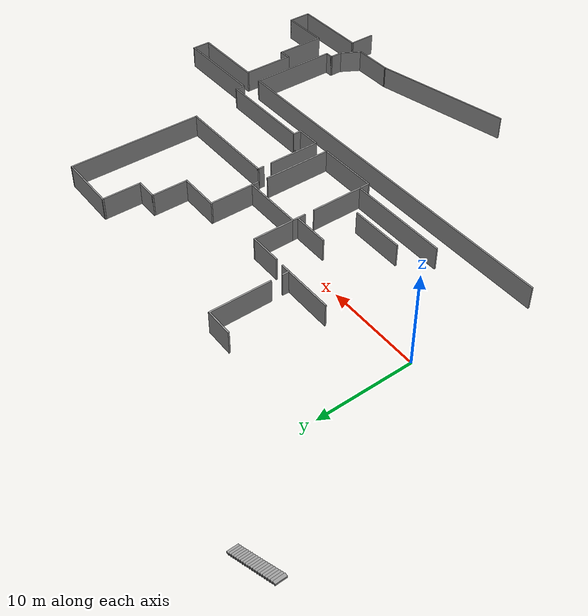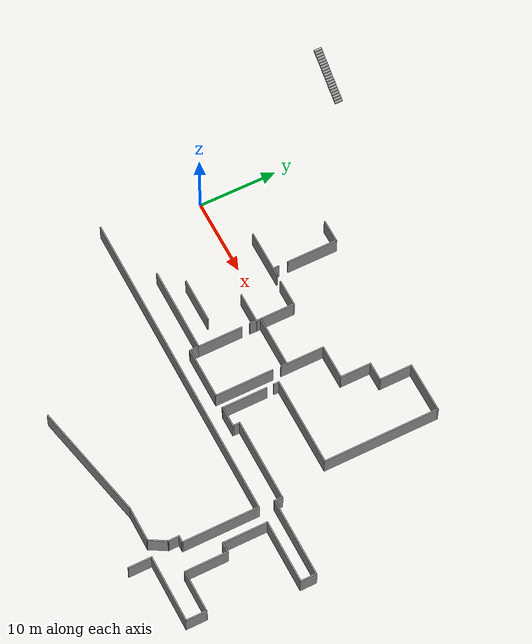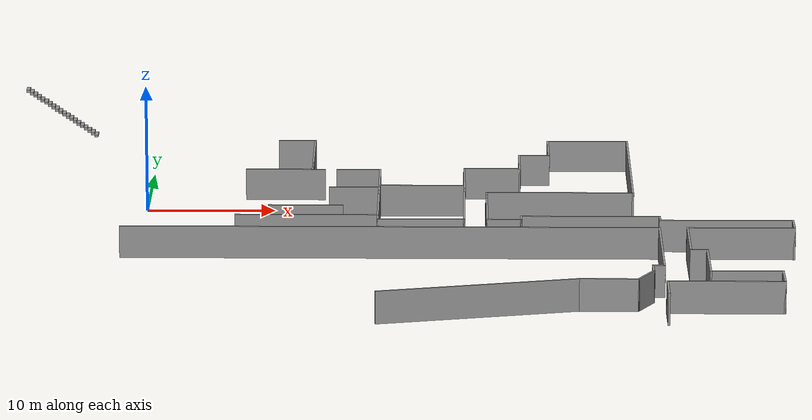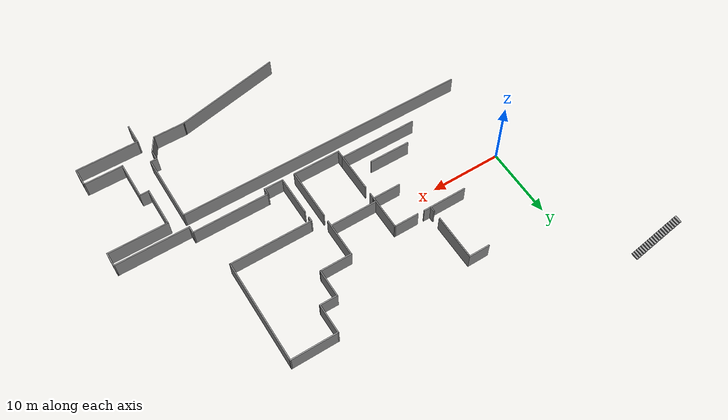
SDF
<sdf version="1.6">
 <model name="uia_section">
  <pose>10.5615 0.198111 0 0 -0 0</pose>
  <link name="Stairs_4">
   <visual name="Stairs_4_Visual_0">
    <pose>-16.0582 21.3116 0.1 0 0 -1.5708</pose>
    <geometry><box><size>1 0.292 0.2</size></box></geometry>
    <material>
     <script><uri>file://media/materials/scripts/gazebo.material</uri><name>Gazebo/Grey</name></script>
     <ambient>1 1 1 1</ambient>
    </material>
    <meta><layer>0</layer></meta>
   </visual>
   <collision name="Stairs_4_Collision_0">
    <geometry><box><size>1 0.292 0.2</size></box></geometry>
    <pose>-16.0582 21.3116 0.1 0 0 -1.5708</pose>
   </collision>
   <visual name="Stairs_4_Visual_1">
    <pose>-16.3502 21.3116 0.3 0 0 -1.5708</pose>
    <geometry><box><size>1 0.292 0.2</size></box></geometry>
    <material>
     <script><uri>file://media/materials/scripts/gazebo.material</uri><name>Gazebo/Grey</name></script>
     <ambient>1 1 1 1</ambient>
    </material>
    <meta><layer>0</layer></meta>
   </visual>
   <collision name="Stairs_4_Collision_1">
    <geometry><box><size>1 0.292 0.2</size></box></geometry>
    <pose>-16.3502 21.3116 0.3 0 0 -1.5708</pose>
   </collision>
   <visual name="Stairs_4_Visual_2">
    <pose>-16.6422 21.3116 0.5 0 0 -1.5708</pose>
    <geometry><box><size>1 0.292 0.2</size></box></geometry>
    <material>
     <script><uri>file://media/materials/scripts/gazebo.material</uri><name>Gazebo/Grey</name></script>
     <ambient>1 1 1 1</ambient>
    </material>
    <meta><layer>0</layer></meta>
   </visual>
   <collision name="Stairs_4_Collision_2">
    <geometry><box><size>1 0.292 0.2</size></box></geometry>
    <pose>-16.6422 21.3116 0.5 0 0 -1.5708</pose>
   </collision>
   <visual name="Stairs_4_Visual_3">
    <pose>-16.9342 21.3116 0.7 0 0 -1.5708</pose>
    <geometry><box><size>1 0.292 0.2</size></box></geometry>
    <material>
     <script><uri>file://media/materials/scripts/gazebo.material</uri><name>Gazebo/Grey</name></script>
     <ambient>1 1 1 1</ambient>
    </material>
    <meta><layer>0</layer></meta>
   </visual>
   <collision name="Stairs_4_Collision_3">
    <geometry><box><size>1 0.292 0.2</size></box></geometry>
    <pose>-16.9342 21.3116 0.7 0 0 -1.5708</pose>
   </collision>
   <visual name="Stairs_4_Visual_4">
    <pose>-17.2262 21.3116 0.9 0 0 -1.5708</pose>
    <geometry><box><size>1 0.292 0.2</size></box></geometry>
    <material>
     <script><uri>file://media/materials/scripts/gazebo.material</uri><name>Gazebo/Grey</name></script>
     <ambient>1 1 1 1</ambient>
    </material>
    <meta><layer>0</layer></meta>
   </visual>
   <collision name="Stairs_4_Collision_4">
    <geometry><box><size>1 0.292 0.2</size></box></geometry>
    <pose>-17.2262 21.3116 0.9 0 0 -1.5708</pose>
   </collision>
   <visual name="Stairs_4_Visual_5">
    <pose>-17.5182 21.3116 1.1 0 0 -1.5708</pose>
    <geometry><box><size>1 0.292 0.2</size></box></geometry>
    <material>
     <script><uri>file://media/materials/scripts/gazebo.material</uri><name>Gazebo/Grey</name></script>
     <ambient>1 1 1 1</ambient>
    </material>
    <meta><layer>0</layer></meta>
   </visual>
   <collision name="Stairs_4_Collision_5">
    <geometry><box><size>1 0.292 0.2</size></box></geometry>
    <pose>-17.5182 21.3116 1.1 0 0 -1.5708</pose>
   </collision>
   <visual name="Stairs_4_Visual_6">
    <pose>-17.8102 21.3116 1.3 0 0 -1.5708</pose>
    <geometry><box><size>1 0.292 0.2</size></box></geometry>
    <material>
     <script><uri>file://media/materials/scripts/gazebo.material</uri><name>Gazebo/Grey</name></script>
     <ambient>1 1 1 1</ambient>
    </material>
    <meta><layer>0</layer></meta>
   </visual>
   <collision name="Stairs_4_Collision_6">
    <geometry><box><size>1 0.292 0.2</size></box></geometry>
    <pose>-17.8102 21.3116 1.3 0 0 -1.5708</pose>
   </collision>
   <visual name="Stairs_4_Visual_7">
    <pose>-18.1022 21.3116 1.5 0 0 -1.5708</pose>
    <geometry><box><size>1 0.292 0.2</size></box></geometry>
    <material>
     <script><uri>file://media/materials/scripts/gazebo.material</uri><name>Gazebo/Grey</name></script>
     <ambient>1 1 1 1</ambient>
    </material>
    <meta><layer>0</layer></meta>
   </visual>
   <collision name="Stairs_4_Collision_7">
    <geometry><box><size>1 0.292 0.2</size></box></geometry>
    <pose>-18.1022 21.3116 1.5 0 0 -1.5708</pose>
   </collision>
   <visual name="Stairs_4_Visual_8">
    <pose>-18.3942 21.3116 1.7 0 0 -1.5708</pose>
    <geometry><box><size>1 0.292 0.2</size></box></geometry>
    <material>
     <script><uri>file://media/materials/scripts/gazebo.material</uri><name>Gazebo/Grey</name></script>
     <ambient>1 1 1 1</ambient>
    </material>
    <meta><layer>0</layer></meta>
   </visual>
   <collision name="Stairs_4_Collision_8">
    <geometry><box><size>1 0.292 0.2</size></box></geometry>
    <pose>-18.3942 21.3116 1.7 0 0 -1.5708</pose>
   </collision>
   <visual name="Stairs_4_Visual_9">
    <pose>-18.6862 21.3116 1.9 0 0 -1.5708</pose>
    <geometry><box><size>1 0.292 0.2</size></box></geometry>
    <material>
     <script><uri>file://media/materials/scripts/gazebo.material</uri><name>Gazebo/Grey</name></script>
     <ambient>1 1 1 1</ambient>
    </material>
    <meta><layer>0</layer></meta>
   </visual>
   <collision name="Stairs_4_Collision_9">
    <geometry><box><size>1 0.292 0.2</size></box></geometry>
    <pose>-18.6862 21.3116 1.9 0 0 -1.5708</pose>
   </collision>
   <visual name="Stairs_4_Visual_10">
    <pose>-18.9782 21.3116 2.1 0 0 -1.5708</pose>
    <geometry><box><size>1 0.292 0.2</size></box></geometry>
    <material>
     <script><uri>file://media/materials/scripts/gazebo.material</uri><name>Gazebo/Grey</name></script>
     <ambient>1 1 1 1</ambient>
    </material>
    <meta><layer>0</layer></meta>
   </visual>
   <collision name="Stairs_4_Collision_10">
    <geometry><box><size>1 0.292 0.2</size></box></geometry>
    <pose>-18.9782 21.3116 2.1 0 0 -1.5708</pose>
   </collision>
   <visual name="Stairs_4_Visual_11">
    <pose>-19.2702 21.3116 2.3 0 0 -1.5708</pose>
    <geometry><box><size>1 0.292 0.2</size></box></geometry>
    <material>
     <script><uri>file://media/materials/scripts/gazebo.material</uri><name>Gazebo/Grey</name></script>
     <ambient>1 1 1 1</ambient>
    </material>
    <meta><layer>0</layer></meta>
   </visual>
   <collision name="Stairs_4_Collision_11">
    <geometry><box><size>1 0.292 0.2</size></box></geometry>
    <pose>-19.2702 21.3116 2.3 0 0 -1.5708</pose>
   </collision>
   <visual name="Stairs_4_Visual_12">
    <pose>-19.5622 21.3116 2.5 0 0 -1.5708</pose>
    <geometry><box><size>1 0.292 0.2</size></box></geometry>
    <material>
     <script><uri>file://media/materials/scripts/gazebo.material</uri><name>Gazebo/Grey</name></script>
     <ambient>1 1 1 1</ambient>
    </material>
    <meta><layer>0</layer></meta>
   </visual>
   <collision name="Stairs_4_Collision_12">
    <geometry><box><size>1 0.292 0.2</size></box></geometry>
    <pose>-19.5622 21.3116 2.5 0 0 -1.5708</pose>
   </collision>
   <visual name="Stairs_4_Visual_13">
    <pose>-19.8542 21.3116 2.7 0 0 -1.5708</pose>
    <geometry><box><size>1 0.292 0.2</size></box></geometry>
    <material>
     <script><uri>file://media/materials/scripts/gazebo.material</uri><name>Gazebo/Grey</name></script>
     <ambient>1 1 1 1</ambient>
    </material>
    <meta><layer>0</layer></meta>
   </visual>
   <collision name="Stairs_4_Collision_13">
    <geometry><box><size>1 0.292 0.2</size></box></geometry>
    <pose>-19.8542 21.3116 2.7 0 0 -1.5708</pose>
   </collision>
   <visual name="Stairs_4_Visual_14">
    <pose>-20.1462 21.3116 2.9 0 0 -1.5708</pose>
    <geometry><box><size>1 0.292 0.2</size></box></geometry>
    <material>
     <script><uri>file://media/materials/scripts/gazebo.material</uri><name>Gazebo/Grey</name></script>
     <ambient>1 1 1 1</ambient>
    </material>
    <meta><layer>0</layer></meta>
   </visual>
   <collision name="Stairs_4_Collision_14">
    <geometry><box><size>1 0.292 0.2</size></box></geometry>
    <pose>-20.1462 21.3116 2.9 0 0 -1.5708</pose>
   </collision>
   <visual name="Stairs_4_Visual_15">
    <pose>-20.4382 21.3116 3.1 0 0 -1.5708</pose>
    <geometry><box><size>1 0.292 0.2</size></box></geometry>
    <material>
     <script><uri>file://media/materials/scripts/gazebo.material</uri><name>Gazebo/Grey</name></script>
     <ambient>1 1 1 1</ambient>
    </material>
    <meta><layer>0</layer></meta>
   </visual>
   <collision name="Stairs_4_Collision_15">
    <geometry><box><size>1 0.292 0.2</size></box></geometry>
    <pose>-20.4382 21.3116 3.1 0 0 -1.5708</pose>
   </collision>
   <visual name="Stairs_4_Visual_16">
    <pose>-20.7302 21.3116 3.3 0 0 -1.5708</pose>
    <geometry><box><size>1 0.292 0.2</size></box></geometry>
    <material>
     <script><uri>file://media/materials/scripts/gazebo.material</uri><name>Gazebo/Grey</name></script>
     <ambient>1 1 1 1</ambient>
    </material>
    <meta><layer>0</layer></meta>
   </visual>
   <collision name="Stairs_4_Collision_16">
    <geometry><box><size>1 0.292 0.2</size></box></geometry>
    <pose>-20.7302 21.3116 3.3 0 0 -1.5708</pose>
   </collision>
   <visual name="Stairs_4_Visual_17">
    <pose>-21.0222 21.3116 3.5 0 0 -1.5708</pose>
    <geometry><box><size>1 0.292 0.2</size></box></geometry>
    <material>
     <script><uri>file://media/materials/scripts/gazebo.material</uri><name>Gazebo/Grey</name></script>
     <ambient>1 1 1 1</ambient>
    </material>
    <meta><layer>0</layer></meta>
   </visual>
   <collision name="Stairs_4_Collision_17">
    <geometry><box><size>1 0.292 0.2</size></box></geometry>
    <pose>-21.0222 21.3116 3.5 0 0 -1.5708</pose>
   </collision>
   <visual name="Stairs_4_Visual_18">
    <pose>-21.3142 21.3116 3.7 0 0 -1.5708</pose>
    <geometry><box><size>1 0.292 0.2</size></box></geometry>
    <material>
     <script><uri>file://media/materials/scripts/gazebo.material</uri><name>Gazebo/Grey</name></script>
     <ambient>1 1 1 1</ambient>
    </material>
    <meta><layer>0</layer></meta>
   </visual>
   <collision name="Stairs_4_Collision_18">
    <geometry><box><size>1 0.292 0.2</size></box></geometry>
    <pose>-21.3142 21.3116 3.7 0 0 -1.5708</pose>
   </collision>
   <visual name="Stairs_4_Visual_19">
    <pose>-21.6062 21.3116 3.9 0 0 -1.5708</pose>
    <geometry><box><size>1 0.292 0.2</size></box></geometry>
    <material>
     <script><uri>file://media/materials/scripts/gazebo.material</uri><name>Gazebo/Grey</name></script>
     <ambient>1 1 1 1</ambient>
    </material>
    <meta><layer>0</layer></meta>
   </visual>
   <collision name="Stairs_4_Collision_19">
    <geometry><box><size>1 0.292 0.2</size></box></geometry>
    <pose>-21.6062 21.3116 3.9 0 0 -1.5708</pose>
   </collision>
  </link>
  <link name="Wall_0">
   <collision name="Wall_0_Collision">
    <geometry><box><size>7.45 0.15 2.5</size></box></geometry>
    <pose>0 0 1.25 0 -0 0</pose>
   </collision>
   <visual name="Wall_0_Visual">
    <pose>0 0 1.25 0 -0 0</pose>
    <geometry><box><size>7.45 0.15 2.5</size></box></geometry>
    <material>
     <script><uri>file://media/materials/scripts/gazebo.material</uri><name>Gazebo/Grey</name></script>
     <ambient>1 1 1 1</ambient>
    </material>
    <meta><layer>0</layer></meta>
   </visual>
   <pose>14.1915 -6.99111 0 0 -0 1.5708</pose>
  </link>
  <link name="Wall_10">
   <collision name="Wall_10_Collision">
    <geometry><box><size>5.6 0.15 2.5</size></box></geometry>
    <pose>0 0 1.25 0 -0 0</pose>
   </collision>
   <visual name="Wall_10_Visual">
    <pose>0 0 1.25 0 -0 0</pose>
    <geometry><box><size>5.6 0.15 2.5</size></box></geometry>
    <material>
     <script><uri>file://media/materials/scripts/gazebo.material</uri><name>Gazebo/Grey</name></script>
     <ambient>1 1 1 1</ambient>
    </material>
    <meta><layer>0</layer></meta>
   </visual>
   <pose>14.2238 0.523029 0 0 -0 -1.5708</pose>
  </link>
  <link name="Wall_12">
   <collision name="Wall_12_Collision">
    <geometry><box><size>0.75 0.15 2.5</size></box></geometry>
    <pose>0 0 1.25 0 -0 0</pose>
   </collision>
   <visual name="Wall_12_Visual">
    <pose>0 0 1.25 0 -0 0</pose>
    <geometry><box><size>0.75 0.15 2.5</size></box></geometry>
    <material>
     <script><uri>file://media/materials/scripts/gazebo.material</uri><name>Gazebo/Grey</name></script>
     <ambient>1 1 1 1</ambient>
    </material>
    <meta><layer>0</layer></meta>
   </visual>
   <pose>15.9238 -3.70197 0 0 -0 -1.5708</pose>
  </link>
  <link name="Wall_15">
   <collision name="Wall_15_Collision">
    <geometry><box><size>5.762 0.15 2.5</size></box></geometry>
    <pose>0 0 1.25 0 -0 0</pose>
   </collision>
   <visual name="Wall_15_Visual">
    <pose>0 0 1.25 0 -0 0</pose>
    <geometry><box><size>5.762 0.15 2.5</size></box></geometry>
    <material>
     <script><uri>file://media/materials/scripts/gazebo.material</uri><name>Gazebo/Grey</name></script>
     <ambient>1 1 1 1</ambient>
    </material>
    <meta><layer>0</layer></meta>
   </visual>
   <pose>15.9415 -7.83511 0 0 -0 -1.5708</pose>
  </link>
  <link name="Wall_168">
   <collision name="Wall_168_Collision">
    <geometry><box><size>4 0.15 2.5</size></box></geometry>
    <pose>0 0 1.25 0 -0 0</pose>
   </collision>
   <visual name="Wall_168_Visual">
    <pose>0 0 1.25 0 -0 0</pose>
    <geometry><box><size>4 0.15 2.5</size></box></geometry>
    <material>
     <script><uri>file://media/materials/scripts/gazebo.material</uri><name>Gazebo/Grey</name></script>
     <ambient>1 1 1 1</ambient>
    </material>
    <meta><layer>0</layer></meta>
   </visual>
   <pose>5.69496 -2.04392 0 0 -0 0</pose>
  </link>
  <link name="Wall_17">
   <collision name="Wall_17_Collision">
    <geometry><box><size>2.75 0.15 2.5</size></box></geometry>
    <pose>0 0 1.25 0 -0 0</pose>
   </collision>
   <visual name="Wall_17_Visual">
    <pose>0 0 1.25 0 -0 0</pose>
    <geometry><box><size>2.75 0.15 2.5</size></box></geometry>
    <material>
     <script><uri>file://media/materials/scripts/gazebo.material</uri><name>Gazebo/Grey</name></script>
     <ambient>1 1 1 1</ambient>
    </material>
    <meta><layer>0</layer></meta>
   </visual>
   <pose>17.2415 -10.6411 0 0 -0 0</pose>
  </link>
  <link name="Wall_170">
   <collision name="Wall_170_Collision">
    <geometry><box><size>1.5 0.15 2.5</size></box></geometry>
    <pose>0 0 1.25 0 -0 0</pose>
   </collision>
   <visual name="Wall_170_Visual">
    <pose>0 0 1.25 0 -0 0</pose>
    <geometry><box><size>1.5 0.15 2.5</size></box></geometry>
    <material>
     <script><uri>file://media/materials/scripts/gazebo.material</uri><name>Gazebo/Grey</name></script>
     <ambient>1 1 1 1</ambient>
    </material>
    <meta><layer>0</layer></meta>
   </visual>
   <pose>7.60587 -2.16678 0 0 -0 1.5708</pose>
  </link>
  <link name="Wall_171">
   <collision name="Wall_171_Collision">
    <geometry><box><size>6.75 0.15 2.5</size></box></geometry>
    <pose>0 0 1.25 0 -0 0</pose>
   </collision>
   <visual name="Wall_171_Visual">
    <pose>0 0 1.25 0 -0 0</pose>
    <geometry><box><size>6.75 0.15 2.5</size></box></geometry>
    <material>
     <script><uri>file://media/materials/scripts/gazebo.material</uri><name>Gazebo/Grey</name></script>
     <ambient>1 1 1 1</ambient>
    </material>
    <meta><layer>0</layer></meta>
   </visual>
   <pose>10.9059 -1.49178 0 0 -0 0</pose>
  </link>
  <link name="Wall_173">
   <collision name="Wall_173_Collision">
    <geometry><box><size>5.7 0.15 2.5</size></box></geometry>
    <pose>0 0 1.25 0 -0 0</pose>
   </collision>
   <visual name="Wall_173_Visual">
    <pose>0 0 1.25 0 -0 0</pose>
    <geometry><box><size>5.7 0.15 2.5</size></box></geometry>
    <material>
     <script><uri>file://media/materials/scripts/gazebo.material</uri><name>Gazebo/Grey</name></script>
     <ambient>1 1 1 1</ambient>
    </material>
    <meta><layer>0</layer></meta>
   </visual>
   <pose>7.5915 -6.76611 0 0 -0 1.5708</pose>
  </link>
  <link name="Wall_175">
   <collision name="Wall_175_Collision">
    <geometry><box><size>4.5 0.15 2.5</size></box></geometry>
    <pose>0 0 1.25 0 -0 0</pose>
   </collision>
   <visual name="Wall_175_Visual">
    <pose>0 0 1.25 0 -0 0</pose>
    <geometry><box><size>4.5 0.15 2.5</size></box></geometry>
    <material>
     <script><uri>file://media/materials/scripts/gazebo.material</uri><name>Gazebo/Grey</name></script>
     <ambient>1 1 1 1</ambient>
    </material>
    <meta><layer>0</layer></meta>
   </visual>
   <pose>7.60587 0.683215 0 0 -0 1.5708</pose>
  </link>
  <link name="Wall_176">
   <collision name="Wall_176_Collision">
    <geometry><box><size>3.5 0.15 2.5</size></box></geometry>
    <pose>0 0 1.25 0 -0 0</pose>
   </collision>
   <visual name="Wall_176_Visual">
    <pose>0 0 1.25 0 -0 0</pose>
    <geometry><box><size>3.5 0.15 2.5</size></box></geometry>
    <material>
     <script><uri>file://media/materials/scripts/gazebo.material</uri><name>Gazebo/Grey</name></script>
     <ambient>1 1 1 1</ambient>
    </material>
    <meta><layer>0</layer></meta>
   </visual>
   <pose>5.93087 2.85821 0 0 -0 3.14159</pose>
  </link>
  <link name="Wall_178">
   <collision name="Wall_178_Collision">
    <geometry><box><size>6.25 0.15 2.5</size></box></geometry>
    <pose>0 0 1.25 0 -0 0</pose>
   </collision>
   <visual name="Wall_178_Visual">
    <pose>0 0 1.25 0 -0 0</pose>
    <geometry><box><size>6.25 0.15 2.5</size></box></geometry>
    <material>
     <script><uri>file://media/materials/scripts/gazebo.material</uri><name>Gazebo/Grey</name></script>
     <ambient>1 1 1 1</ambient>
    </material>
    <meta><layer>0</layer></meta>
   </visual>
   <pose>0.166398 2.90441 0 0 -0 3.14159</pose>
  </link>
  <link name="Wall_18">
   <collision name="Wall_18_Collision">
    <geometry><box><size>1 0.15 2.5</size></box></geometry>
    <pose>0 0 1.25 0 -0 0</pose>
   </collision>
   <visual name="Wall_18_Visual">
    <pose>0 0 1.25 0 -0 0</pose>
    <geometry><box><size>1 0.15 2.5</size></box></geometry>
    <material>
     <script><uri>file://media/materials/scripts/gazebo.material</uri><name>Gazebo/Grey</name></script>
     <ambient>1 1 1 1</ambient>
    </material>
    <meta><layer>0</layer></meta>
   </visual>
   <pose>18.5415 -10.2161 0 0 -0 1.5708</pose>
  </link>
  <link name="Wall_182">
   <collision name="Wall_182_Collision">
    <geometry><box><size>3 0.15 2.5</size></box></geometry>
    <pose>0 0 1.25 0 -0 0</pose>
   </collision>
   <visual name="Wall_182_Visual">
    <pose>0 0 1.25 0 -0 0</pose>
    <geometry><box><size>3 0.15 2.5</size></box></geometry>
    <material>
     <script><uri>file://media/materials/scripts/gazebo.material</uri><name>Gazebo/Grey</name></script>
     <ambient>1 1 1 1</ambient>
    </material>
    <meta><layer>0</layer></meta>
   </visual>
   <pose>0.853947 11.2473 0 0 -0 0</pose>
  </link>
  <link name="Wall_183">
   <collision name="Wall_183_Collision">
    <geometry><box><size>6.5 0.15 2.5</size></box></geometry>
    <pose>0 0 1.25 0 -0 0</pose>
   </collision>
   <visual name="Wall_183_Visual">
    <pose>0 0 1.25 0 -0 0</pose>
    <geometry><box><size>6.5 0.15 2.5</size></box></geometry>
    <material>
     <script><uri>file://media/materials/scripts/gazebo.material</uri><name>Gazebo/Grey</name></script>
     <ambient>1 1 1 1</ambient>
    </material>
    <meta><layer>0</layer></meta>
   </visual>
   <pose>2.27895 8.07225 0 0 -0 -1.5708</pose>
  </link>
  <link name="Wall_185">
   <collision name="Wall_185_Collision">
    <geometry><box><size>0.75 0.15 2.5</size></box></geometry>
    <pose>0 0 1.25 0 -0 0</pose>
   </collision>
   <visual name="Wall_185_Visual">
    <pose>0 0 1.25 0 -0 0</pose>
    <geometry><box><size>0.75 0.15 2.5</size></box></geometry>
    <material>
     <script><uri>file://media/materials/scripts/gazebo.material</uri><name>Gazebo/Grey</name></script>
     <ambient>1 1 1 1</ambient>
    </material>
    <meta><layer>0</layer></meta>
   </visual>
   <pose>2.28244 3.28446 0 0 -0 1.5708</pose>
  </link>
  <link name="Wall_187">
   <collision name="Wall_187_Collision">
    <geometry><box><size>5.75 0.15 2.5</size></box></geometry>
    <pose>0 0 1.25 0 -0 0</pose>
   </collision>
   <visual name="Wall_187_Visual">
    <pose>0 0 1.25 0 -0 0</pose>
    <geometry><box><size>5.75 0.15 2.5</size></box></geometry>
    <material>
     <script><uri>file://media/materials/scripts/gazebo.material</uri><name>Gazebo/Grey</name></script>
     <ambient>1 1 1 1</ambient>
    </material>
    <meta><layer>0</layer></meta>
   </visual>
   <pose>2.00889 -6.962 0 0 -0 0</pose>
  </link>
  <link name="Wall_189">
   <collision name="Wall_189_Collision">
    <geometry><box><size>9.75 0.15 2.5</size></box></geometry>
    <pose>0 0 1.25 0 -0 0</pose>
   </collision>
   <visual name="Wall_189_Visual">
    <pose>0 0 1.25 0 -0 0</pose>
    <geometry><box><size>9.75 0.15 2.5</size></box></geometry>
    <material>
     <script><uri>file://media/materials/scripts/gazebo.material</uri><name>Gazebo/Grey</name></script>
     <ambient>1 1 1 1</ambient>
    </material>
    <meta><layer>0</layer></meta>
   </visual>
   <pose>28.9645 -17.4981 0 0 -0 -1.5708</pose>
  </link>
  <link name="Wall_19">
   <collision name="Wall_19_Collision">
    <geometry><box><size>10.7 0.15 2.5</size></box></geometry>
    <pose>0 0 1.25 0 -0 0</pose>
   </collision>
   <visual name="Wall_19_Visual">
    <pose>0 0 1.25 0 -0 0</pose>
    <geometry><box><size>10.7 0.15 2.5</size></box></geometry>
    <material>
     <script><uri>file://media/materials/scripts/gazebo.material</uri><name>Gazebo/Grey</name></script>
     <ambient>1 1 1 1</ambient>
    </material>
    <meta><layer>0</layer></meta>
   </visual>
   <pose>23.8165 -9.79111 0 0 -0 0</pose>
  </link>
  <link name="Wall_191">
   <collision name="Wall_191_Collision">
    <geometry><box><size>5.5 0.15 2.5</size></box></geometry>
    <pose>0 0 1.25 0 -0 0</pose>
   </collision>
   <visual name="Wall_191_Visual">
    <pose>0 0 1.25 0 -0 0</pose>
    <geometry><box><size>5.5 0.15 2.5</size></box></geometry>
    <material>
     <script><uri>file://media/materials/scripts/gazebo.material</uri><name>Gazebo/Grey</name></script>
     <ambient>1 1 1 1</ambient>
    </material>
    <meta><layer>0</layer></meta>
   </visual>
   <pose>32.3145 -20.9731 0 0 -0 -1.5708</pose>
  </link>
  <link name="Wall_192">
   <collision name="Wall_192_Collision">
    <geometry><box><size>5.473 0.15 2.5</size></box></geometry>
    <pose>0 0 1.25 0 -0 0</pose>
   </collision>
   <visual name="Wall_192_Visual">
    <pose>0 0 1.25 0 -0 0</pose>
    <geometry><box><size>5.473 0.15 2.5</size></box></geometry>
    <material>
     <script><uri>file://media/materials/scripts/gazebo.material</uri><name>Gazebo/Grey</name></script>
     <ambient>1 1 1 1</ambient>
    </material>
    <meta><layer>0</layer></meta>
   </visual>
   <pose>34.976 -23.6481 0 0 -0 0</pose>
  </link>
  <link name="Wall_196">
   <collision name="Wall_196_Collision">
    <geometry><box><size>5.75 0.15 2.5</size></box></geometry>
    <pose>0 0 1.25 0 -0 0</pose>
   </collision>
   <visual name="Wall_196_Visual">
    <pose>0 0 1.25 0 -0 0</pose>
    <geometry><box><size>5.75 0.15 2.5</size></box></geometry>
    <material>
     <script><uri>file://media/materials/scripts/gazebo.material</uri><name>Gazebo/Grey</name></script>
     <ambient>1 1 1 1</ambient>
    </material>
    <meta><layer>0</layer></meta>
   </visual>
   <pose>31.0915 -15.4981 0 0 -0 -1.5708</pose>
  </link>
  <link name="Wall_198">
   <collision name="Wall_198_Collision">
    <geometry><box><size>1.373 0.15 2.5</size></box></geometry>
    <pose>0 0 1.25 0 -0 0</pose>
   </collision>
   <visual name="Wall_198_Visual">
    <pose>0 0 1.25 0 -0 0</pose>
    <geometry><box><size>1.373 0.15 2.5</size></box></geometry>
    <material>
     <script><uri>file://media/materials/scripts/gazebo.material</uri><name>Gazebo/Grey</name></script>
     <ambient>1 1 1 1</ambient>
    </material>
    <meta><layer>0</layer></meta>
   </visual>
   <pose>31.703 -18.2981 0 0 -0 0</pose>
  </link>
  <link name="Wall_2">
   <collision name="Wall_2_Collision">
    <geometry><box><size>11.5 0.15 2.5</size></box></geometry>
    <pose>0 0 1.25 0 -0 0</pose>
   </collision>
   <visual name="Wall_2_Visual">
    <pose>0 0 1.25 0 -0 0</pose>
    <geometry><box><size>11.5 0.15 2.5</size></box></geometry>
    <material>
     <script><uri>file://media/materials/scripts/gazebo.material</uri><name>Gazebo/Grey</name></script>
     <ambient>1 1 1 1</ambient>
    </material>
    <meta><layer>0</layer></meta>
   </visual>
   <pose>21.5988 -3.40197 0 0 -0 0</pose>
  </link>
  <link name="Wall_204">
   <collision name="Wall_204_Collision">
    <geometry><box><size>1 0.15 2.5</size></box></geometry>
    <pose>0 0 1.25 0 -0 0</pose>
   </collision>
   <visual name="Wall_204_Visual">
    <pose>0 0 1.25 0 -0 0</pose>
    <geometry><box><size>1 0.15 2.5</size></box></geometry>
    <material>
     <script><uri>file://media/materials/scripts/gazebo.material</uri><name>Gazebo/Grey</name></script>
     <ambient>1 1 1 1</ambient>
    </material>
    <meta><layer>0</layer></meta>
   </visual>
   <pose>28.5395 -22.2981 0 0 -0 3.14159</pose>
  </link>
  <link name="Wall_205">
   <collision name="Wall_205_Collision">
    <geometry><box><size>1.5 0.15 2.5</size></box></geometry>
    <pose>0 0 1.25 0 -0 0</pose>
   </collision>
   <visual name="Wall_205_Visual">
    <pose>0 0 1.25 0 -0 0</pose>
    <geometry><box><size>1.5 0.15 2.5</size></box></geometry>
    <material>
     <script><uri>file://media/materials/scripts/gazebo.material</uri><name>Gazebo/Grey</name></script>
     <ambient>1 1 1 1</ambient>
    </material>
    <meta><layer>0</layer></meta>
   </visual>
   <pose>28.1145 -22.9731 0 0 -0 -1.5708</pose>
  </link>
  <link name="Wall_207">
   <collision name="Wall_207_Collision">
    <geometry><box><size>2.5 0.15 2.5</size></box></geometry>
    <pose>0 0 1.25 0 -0 0</pose>
   </collision>
   <visual name="Wall_207_Visual">
    <pose>0 0 1.25 0 -0 0</pose>
    <geometry><box><size>2.5 0.15 2.5</size></box></geometry>
    <material>
     <script><uri>file://media/materials/scripts/gazebo.material</uri><name>Gazebo/Grey</name></script>
     <ambient>1 1 1 1</ambient>
    </material>
    <meta><layer>0</layer></meta>
   </visual>
   <pose>27.527 -24.6657 0 0 -0 -2.0944</pose>
  </link>
  <link name="Wall_208">
   <collision name="Wall_208_Collision">
    <geometry><box><size>4.5 0.15 2.5</size></box></geometry>
    <pose>0 0 1.25 0 -0 0</pose>
   </collision>
   <visual name="Wall_208_Visual">
    <pose>0 0 1.25 0 -0 0</pose>
    <geometry><box><size>4.5 0.15 2.5</size></box></geometry>
    <material>
     <script><uri>file://media/materials/scripts/gazebo.material</uri><name>Gazebo/Grey</name></script>
     <ambient>1 1 1 1</ambient>
    </material>
    <meta><layer>0</layer></meta>
   </visual>
   <pose>24.7645 -25.6832 0 0 -0 3.14156</pose>
  </link>
  <link name="Wall_209">
   <collision name="Wall_209_Collision">
    <geometry><box><size>15.3216 0.15 2.5</size></box></geometry>
    <pose>0 0 1.25 0 -0 0</pose>
   </collision>
   <visual name="Wall_209_Visual">
    <pose>0 0 1.25 0 -0 0</pose>
    <geometry><box><size>15.3216 0.15 2.5</size></box></geometry>
    <material>
     <script><uri>file://media/materials/scripts/gazebo.material</uri><name>Gazebo/Grey</name></script>
     <ambient>1 1 1 1</ambient>
    </material>
    <meta><layer>0</layer></meta>
   </visual>
   <pose>15.176 -27.2906 0 0 -0 -2.92806</pose>
  </link>
  <link name="Wall_21">
   <collision name="Wall_21_Collision">
    <geometry><box><size>1.1 0.15 2.5</size></box></geometry>
    <pose>0 0 1.25 0 -0 0</pose>
   </collision>
   <visual name="Wall_21_Visual">
    <pose>0 0 1.25 0 -0 0</pose>
    <geometry><box><size>1.1 0.15 2.5</size></box></geometry>
    <material>
     <script><uri>file://media/materials/scripts/gazebo.material</uri><name>Gazebo/Grey</name></script>
     <ambient>1 1 1 1</ambient>
    </material>
    <meta><layer>0</layer></meta>
   </visual>
   <pose>29.0915 -10.2661 0 0 -0 -1.5708</pose>
  </link>
  <link name="Wall_211">
   <collision name="Wall_211_Collision">
    <geometry><box><size>3 0.15 2.5</size></box></geometry>
    <pose>0 0 1.25 0 -0 0</pose>
   </collision>
   <visual name="Wall_211_Visual">
    <pose>0 0 1.25 0 -0 0</pose>
    <geometry><box><size>3 0.15 2.5</size></box></geometry>
    <material>
     <script><uri>file://media/materials/scripts/gazebo.material</uri><name>Gazebo/Grey</name></script>
     <ambient>1 1 1 1</ambient>
    </material>
    <meta><layer>0</layer></meta>
   </visual>
   <pose>29.0375 -27.5979 0 0 -0 1.57077</pose>
  </link>
  <link name="Wall_212">
   <collision name="Wall_212_Collision">
    <geometry><box><size>8.75 0.15 2.5</size></box></geometry>
    <pose>0 0 1.25 0 -0 0</pose>
   </collision>
   <visual name="Wall_212_Visual">
    <pose>0 0 1.25 0 -0 0</pose>
    <geometry><box><size>8.75 0.15 2.5</size></box></geometry>
    <material>
     <script><uri>file://media/materials/scripts/gazebo.material</uri><name>Gazebo/Grey</name></script>
     <ambient>1 1 1 1</ambient>
    </material>
    <meta><layer>0</layer></meta>
   </visual>
   <pose>33.3375 -26.1731 0 0 -0 0</pose>
  </link>
  <link name="Wall_214">
   <collision name="Wall_214_Collision">
    <geometry><box><size>2.675 0.15 2.5</size></box></geometry>
    <pose>0 0 1.25 0 -0 0</pose>
   </collision>
   <visual name="Wall_214_Visual">
    <pose>0 0 1.25 0 -0 0</pose>
    <geometry><box><size>2.675 0.15 2.5</size></box></geometry>
    <material>
     <script><uri>file://media/materials/scripts/gazebo.material</uri><name>Gazebo/Grey</name></script>
     <ambient>1 1 1 1</ambient>
    </material>
    <meta><layer>0</layer></meta>
   </visual>
   <pose>37.6375 -24.9106 0 0 -0 1.5708</pose>
  </link>
  <link name="Wall_23">
   <collision name="Wall_23_Collision">
    <geometry><box><size>10.25 0.15 2.5</size></box></geometry>
    <pose>0 0 1.25 0 -0 0</pose>
   </collision>
   <visual name="Wall_23_Visual">
    <pose>0 0 1.25 0 -0 0</pose>
    <geometry><box><size>10.25 0.15 2.5</size></box></geometry>
    <material>
     <script><uri>file://media/materials/scripts/gazebo.material</uri><name>Gazebo/Grey</name></script>
     <ambient>1 1 1 1</ambient>
    </material>
    <meta><layer>0</layer></meta>
   </visual>
   <pose>34.1415 -10.7411 0 0 -0 0</pose>
  </link>
  <link name="Wall_24">
   <collision name="Wall_24_Collision">
    <geometry><box><size>2.107 0.15 2.5</size></box></geometry>
    <pose>0 0 1.25 0 -0 0</pose>
   </collision>
   <visual name="Wall_24_Visual">
    <pose>0 0 1.25 0 -0 0</pose>
    <geometry><box><size>2.107 0.15 2.5</size></box></geometry>
    <material>
     <script><uri>file://media/materials/scripts/gazebo.material</uri><name>Gazebo/Grey</name></script>
     <ambient>1 1 1 1</ambient>
    </material>
    <meta><layer>0</layer></meta>
   </visual>
   <pose>39.1915 -11.7196 0 0 -0 -1.5708</pose>
  </link>
  <link name="Wall_25">
   <collision name="Wall_25_Collision">
    <geometry><box><size>8.25 0.15 2.5</size></box></geometry>
    <pose>0 0 1.25 0 -0 0</pose>
   </collision>
   <visual name="Wall_25_Visual">
    <pose>0 0 1.25 0 -0 0</pose>
    <geometry><box><size>8.25 0.15 2.5</size></box></geometry>
    <material>
     <script><uri>file://media/materials/scripts/gazebo.material</uri><name>Gazebo/Grey</name></script>
     <ambient>1 1 1 1</ambient>
    </material>
    <meta><layer>0</layer></meta>
   </visual>
   <pose>35.1415 -12.6981 0 0 -0 3.14159</pose>
  </link>
  <link name="Wall_27">
   <collision name="Wall_27_Collision">
    <geometry><box><size>41 0.15 2.5</size></box></geometry>
    <pose>0 0 1.25 0 -0 0</pose>
   </collision>
   <visual name="Wall_27_Visual">
    <pose>0 0 1.25 0 -0 0</pose>
    <geometry><box><size>41 0.15 2.5</size></box></geometry>
    <material>
     <script><uri>file://media/materials/scripts/gazebo.material</uri><name>Gazebo/Grey</name></script>
     <ambient>1 1 1 1</ambient>
    </material>
    <meta><layer>0</layer></meta>
   </visual>
   <pose>8.5395 -12.6981 0 0 -0 3.14159</pose>
  </link>
  <link name="Wall_29">
   <collision name="Wall_29_Collision">
    <geometry><box><size>6.75 0.15 2.5</size></box></geometry>
    <pose>0 0 1.25 0 -0 0</pose>
   </collision>
   <visual name="Wall_29_Visual">
    <pose>0 0 1.25 0 -0 0</pose>
    <geometry><box><size>6.75 0.15 2.5</size></box></geometry>
    <material>
     <script><uri>file://media/materials/scripts/gazebo.material</uri><name>Gazebo/Grey</name></script>
     <ambient>1 1 1 1</ambient>
    </material>
    <meta><layer>0</layer></meta>
   </visual>
   <pose>10.8915 -10.6411 0 0 -0 3.14159</pose>
  </link>
  <link name="Wall_3">
   <collision name="Wall_3_Collision">
    <geometry><box><size>14.75 0.15 2.5</size></box></geometry>
    <pose>0 0 1.25 0 -0 0</pose>
   </collision>
   <visual name="Wall_3_Visual">
    <pose>0 0 1.25 0 -0 0</pose>
    <geometry><box><size>14.75 0.15 2.5</size></box></geometry>
    <material>
     <script><uri>file://media/materials/scripts/gazebo.material</uri><name>Gazebo/Grey</name></script>
     <ambient>1 1 1 1</ambient>
    </material>
    <meta><layer>0</layer></meta>
   </visual>
   <pose>27.2738 3.89803 0 0 -0 1.5708</pose>
  </link>
  <link name="Wall_30">
   <collision name="Wall_30_Collision">
    <geometry><box><size>1.25 0.15 2.5</size></box></geometry>
    <pose>0 0 1.25 0 -0 0</pose>
   </collision>
   <visual name="Wall_30_Visual">
    <pose>0 0 1.25 0 -0 0</pose>
    <geometry><box><size>1.25 0.15 2.5</size></box></geometry>
    <material>
     <script><uri>file://media/materials/scripts/gazebo.material</uri><name>Gazebo/Grey</name></script>
     <ambient>1 1 1 1</ambient>
    </material>
    <meta><layer>0</layer></meta>
   </visual>
   <pose>7.5915 -10.0911 0 0 -0 1.5708</pose>
  </link>
  <link name="Wall_31">
   <collision name="Wall_31_Collision">
    <geometry><box><size>11 0.15 2.5</size></box></geometry>
    <pose>0 0 1.25 0 -0 0</pose>
   </collision>
   <visual name="Wall_31_Visual">
    <pose>0 0 1.25 0 -0 0</pose>
    <geometry><box><size>11 0.15 2.5</size></box></geometry>
    <material>
     <script><uri>file://media/materials/scripts/gazebo.material</uri><name>Gazebo/Grey</name></script>
     <ambient>1 1 1 1</ambient>
    </material>
    <meta><layer>0</layer></meta>
   </visual>
   <pose>2.1665 -9.54111 0 0 -0 3.14159</pose>
  </link>
  <link name="Wall_5">
   <collision name="Wall_5_Collision">
    <geometry><box><size>6.5 0.15 2.5</size></box></geometry>
    <pose>0 0 1.25 0 -0 0</pose>
   </collision>
   <visual name="Wall_5_Visual">
    <pose>0 0 1.25 0 -0 0</pose>
    <geometry><box><size>6.5 0.15 2.5</size></box></geometry>
    <material>
     <script><uri>file://media/materials/scripts/gazebo.material</uri><name>Gazebo/Grey</name></script>
     <ambient>1 1 1 1</ambient>
    </material>
    <meta><layer>0</layer></meta>
   </visual>
   <pose>24.0988 11.198 0 0 -0 3.14159</pose>
  </link>
  <link name="Wall_6">
   <collision name="Wall_6_Collision">
    <geometry><box><size>4.25 0.15 2.5</size></box></geometry>
    <pose>0 0 1.25 0 -0 0</pose>
   </collision>
   <visual name="Wall_6_Visual">
    <pose>0 0 1.25 0 -0 0</pose>
    <geometry><box><size>4.25 0.15 2.5</size></box></geometry>
    <material>
     <script><uri>file://media/materials/scripts/gazebo.material</uri><name>Gazebo/Grey</name></script>
     <ambient>1 1 1 1</ambient>
    </material>
    <meta><layer>0</layer></meta>
   </visual>
   <pose>20.9238 9.14803 0 0 -0 -1.5708</pose>
  </link>
  <link name="Wall_7">
   <collision name="Wall_7_Collision">
    <geometry><box><size>2.5 0.15 2.5</size></box></geometry>
    <pose>0 0 1.25 0 -0 0</pose>
   </collision>
   <visual name="Wall_7_Visual">
    <pose>0 0 1.25 0 -0 0</pose>
    <geometry><box><size>2.5 0.15 2.5</size></box></geometry>
    <material>
     <script><uri>file://media/materials/scripts/gazebo.material</uri><name>Gazebo/Grey</name></script>
     <ambient>1 1 1 1</ambient>
    </material>
    <meta><layer>0</layer></meta>
   </visual>
   <pose>19.7488 7.09803 0 0 -0 3.14159</pose>
  </link>
  <link name="Wall_8">
   <collision name="Wall_8_Collision">
    <geometry><box><size>4 0.15 2.5</size></box></geometry>
    <pose>0 0 1.25 0 -0 0</pose>
   </collision>
   <visual name="Wall_8_Visual">
    <pose>0 0 1.25 0 -0 0</pose>
    <geometry><box><size>4 0.15 2.5</size></box></geometry>
    <material>
     <script><uri>file://media/materials/scripts/gazebo.material</uri><name>Gazebo/Grey</name></script>
     <ambient>1 1 1 1</ambient>
    </material>
    <meta><layer>0</layer></meta>
   </visual>
   <pose>18.5738 5.17303 0 0 -0 -1.5708</pose>
  </link>
  <link name="Wall_9">
   <collision name="Wall_9_Collision">
    <geometry><box><size>4.5 0.15 2.5</size></box></geometry>
    <pose>0 0 1.25 0 -0 0</pose>
   </collision>
   <visual name="Wall_9_Visual">
    <pose>0 0 1.25 0 -0 0</pose>
    <geometry><box><size>4.5 0.15 2.5</size></box></geometry>
    <material>
     <script><uri>file://media/materials/scripts/gazebo.material</uri><name>Gazebo/Grey</name></script>
     <ambient>1 1 1 1</ambient>
    </material>
    <meta><layer>0</layer></meta>
   </visual>
   <pose>16.3988 3.24803 0 0 -0 3.14159</pose>
  </link>
  <static>1</static>
 </model>
</sdf>
